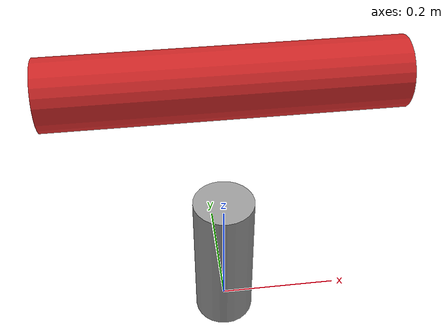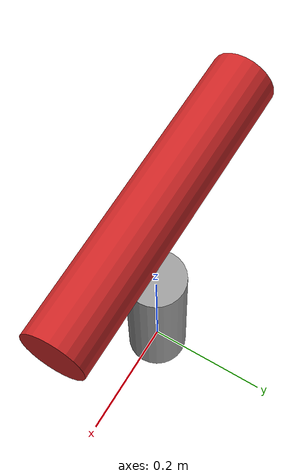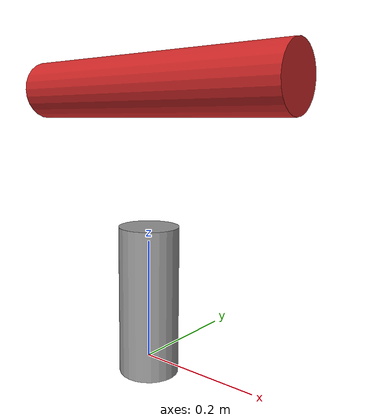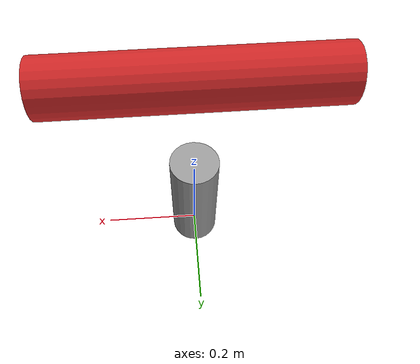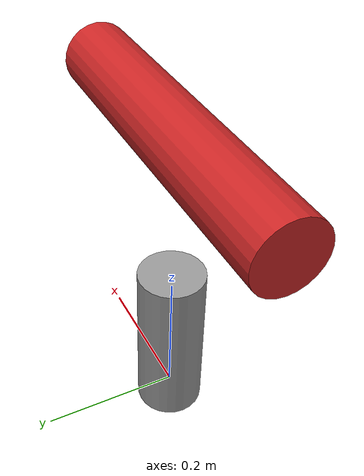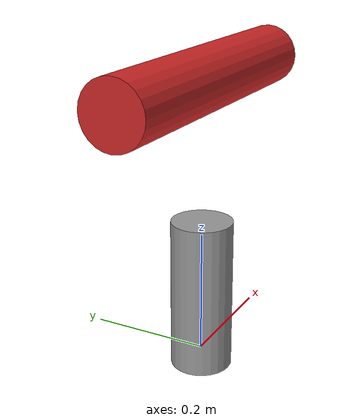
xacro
<?xml version="1.0"?>
<robot xmlns:xacro="http://www.ros.org/wiki/xacro" name="macro_block">
  <xacro:macro name="segment" params="name parent *origin length:=0.25 radius:=${0.5 / 10} color:=gray">
    <link name="${name}">
      <visual>
        <geometry>
          <cylinder radius="${radius}" length="${length}"/>
        </geometry>
        <material name="${color}"/>
      </visual>
    </link>
    <joint name="${name}_joint" type="fixed">
      <parent link="${parent}"/>
      <child link="${name}"/>
      <xacro:insert_block name="origin"/>
    </joint>
  </xacro:macro>
  <link name="base"/>
  <xacro:segment name="upper" parent="base">
    <origin xyz="0 0 0.1" rpy="0 0 0"/>
  </xacro:segment>
  <xacro:segment name="lower" parent="upper" length="0.5" color="red">
    <origin xyz="0 0 ${0.25 + 0.1}" rpy="0 ${pi / 2} 0"/>
  </xacro:segment>
</robot>
